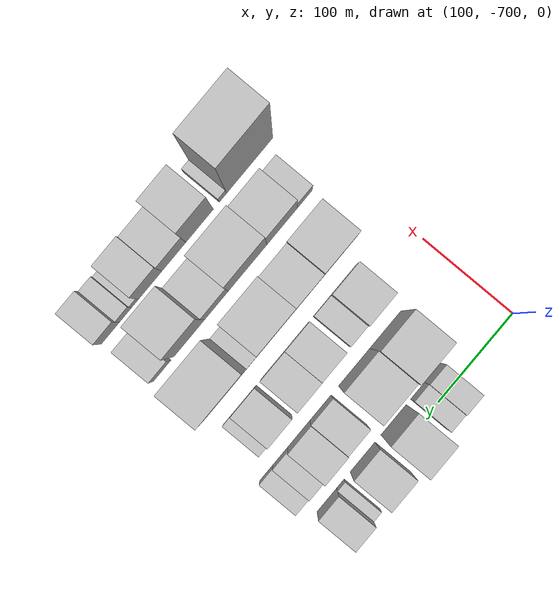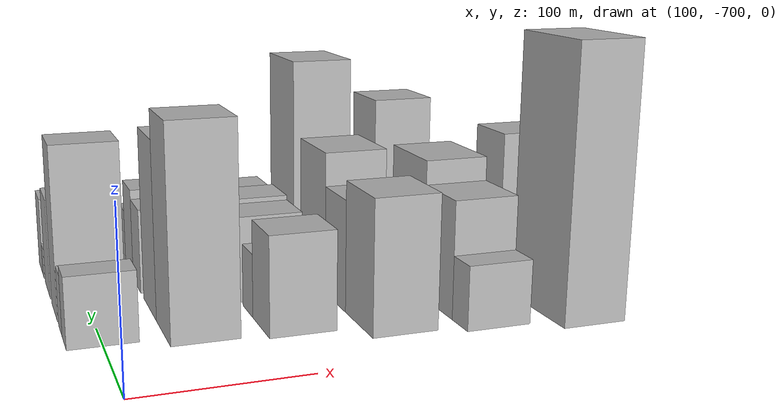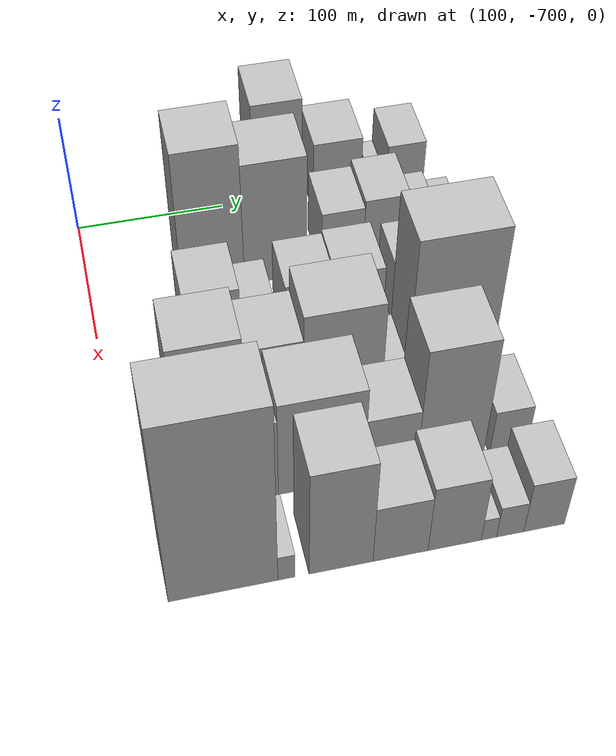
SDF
<sdf version="1.6">
 <world name="default">
  <model name="building_6">
   <static>1</static>
   <pose>100.0000 -616.7171 0 0.000000 0.000000 0.000000</pose>
   <link name="link">
    <pose>0 0 21.00 0 0 0</pose>
    <collision name="collision"><geometry><box><size>40.0000 21.7406 42.0000</size></box></geometry></collision>
    <visual name="visual">
     <cast_shadows>0</cast_shadows>
     <geometry><box><size>40.0000 21.7406 42.0000</size></box></geometry>
     <material>
      <script>
       <uri>model://HANNAS_wall/materials/scripts</uri>
       <uri>model://HANNAS_wall/materials/textures</uri>
       <name>vrc/HANNAS_wall</name>
      </script>
     </material>
    </visual>
   </link>
  </model>
  <model name="building_7">
   <static>1</static>
   <pose>100.0000 -596.4582 0 0.000000 0.000000 0.000000</pose>
   <link name="link">
    <pose>0 0 18.00 0 0 0</pose>
    <collision name="collision"><geometry><box><size>40.0000 18.7772 36.0000</size></box></geometry></collision>
    <visual name="visual">
     <cast_shadows>0</cast_shadows>
     <geometry><box><size>40.0000 18.7772 36.0000</size></box></geometry>
     <material>
      <script>
       <uri>model://HANNAS_wall/materials/scripts</uri>
       <uri>model://HANNAS_wall/materials/textures</uri>
       <name>vrc/HANNAS_wall</name>
      </script>
     </material>
    </visual>
   </link>
  </model>
  <model name="building_8">
   <static>1</static>
   <pose>100.0000 -564.1123 0 0.000000 0.000000 0.000000</pose>
   <link name="link">
    <pose>0 0 52.50 0 0 0</pose>
    <collision name="collision"><geometry><box><size>40.0000 33.9147 105.0000</size></box></geometry></collision>
    <visual name="visual">
     <cast_shadows>0</cast_shadows>
     <geometry><box><size>40.0000 33.9147 105.0000</size></box></geometry>
     <material>
      <script>
       <uri>model://HANNAS_wall/materials/scripts</uri>
       <uri>model://HANNAS_wall/materials/textures</uri>
       <name>vrc/HANNAS_wall</name>
      </script>
     </material>
    </visual>
   </link>
  </model>
  <model name="building_9">
   <static>1</static>
   <pose>100.0000 -522.4168 0 0.000000 0.000000 0.000000</pose>
   <link name="link">
    <pose>0 0 31.50 0 0 0</pose>
    <collision name="collision"><geometry><box><size>40.0000 33.4762 63.0000</size></box></geometry></collision>
    <visual name="visual">
     <cast_shadows>0</cast_shadows>
     <geometry><box><size>40.0000 33.4762 63.0000</size></box></geometry>
     <material>
      <script>
       <uri>model://HANNAS_wall/materials/scripts</uri>
       <uri>model://HANNAS_wall/materials/textures</uri>
       <name>vrc/HANNAS_wall</name>
      </script>
     </material>
    </visual>
   </link>
  </model>
  <model name="building_10">
   <static>1</static>
   <pose>100.0000 -492.5437 0 0.000000 0.000000 0.000000</pose>
   <link name="link">
    <pose>0 0 10.50 0 0 0</pose>
    <collision name="collision"><geometry><box><size>40.0000 10.2700 21.0000</size></box></geometry></collision>
    <visual name="visual">
     <cast_shadows>0</cast_shadows>
     <geometry><box><size>40.0000 10.2700 21.0000</size></box></geometry>
     <material>
      <script>
       <uri>model://HANNAS_wall/materials/scripts</uri>
       <uri>model://HANNAS_wall/materials/textures</uri>
       <name>vrc/HANNAS_wall</name>
      </script>
     </material>
    </visual>
   </link>
  </model>
  <model name="building_11">
   <static>1</static>
   <pose>100.0000 -474.2443 0 0.000000 0.000000 0.000000</pose>
   <link name="link">
    <pose>0 0 25.50 0 0 0</pose>
    <collision name="collision"><geometry><box><size>40.0000 26.3288 51.0000</size></box></geometry></collision>
    <visual name="visual">
     <cast_shadows>0</cast_shadows>
     <geometry><box><size>40.0000 26.3288 51.0000</size></box></geometry>
     <material>
      <script>
       <uri>model://HANNAS_wall/materials/scripts</uri>
       <uri>model://HANNAS_wall/materials/textures</uri>
       <name>vrc/HANNAS_wall</name>
      </script>
     </material>
    </visual>
   </link>
  </model>
  <model name="building_59">
   <static>1</static>
   <pose>155.0000 -619.2268 0 0.000000 0.000000 0.000000</pose>
   <link name="link">
    <pose>0 0 63.00 0 0 0</pose>
    <collision name="collision"><geometry><box><size>40.0000 41.8789 126.0000</size></box></geometry></collision>
    <visual name="visual">
     <cast_shadows>0</cast_shadows>
     <geometry><box><size>40.0000 41.8789 126.0000</size></box></geometry>
     <material>
      <script>
       <uri>model://HANNAS_wall/materials/scripts</uri>
       <uri>model://HANNAS_wall/materials/textures</uri>
       <name>vrc/HANNAS_wall</name>
      </script>
     </material>
    </visual>
   </link>
  </model>
  <model name="building_60">
   <static>1</static>
   <pose>155.0000 -577.2388 0 0.000000 0.000000 0.000000</pose>
   <link name="link">
    <pose>0 0 54.00 0 0 0</pose>
    <collision name="collision"><geometry><box><size>40.0000 42.0971 108.0000</size></box></geometry></collision>
    <visual name="visual">
     <cast_shadows>0</cast_shadows>
     <geometry><box><size>40.0000 42.0971 108.0000</size></box></geometry>
     <material>
      <script>
       <uri>model://HANNAS_wall/materials/scripts</uri>
       <uri>model://HANNAS_wall/materials/textures</uri>
       <name>vrc/HANNAS_wall</name>
      </script>
     </material>
    </visual>
   </link>
  </model>
  <model name="building_61">
   <static>1</static>
   <pose>155.0000 -531.8750 0 0.000000 0.000000 0.000000</pose>
   <link name="link">
    <pose>0 0 27.00 0 0 0</pose>
    <collision name="collision"><geometry><box><size>40.0000 28.6306 54.0000</size></box></geometry></collision>
    <visual name="visual">
     <cast_shadows>0</cast_shadows>
     <geometry><box><size>40.0000 28.6306 54.0000</size></box></geometry>
     <material>
      <script>
       <uri>model://HANNAS_wall/materials/scripts</uri>
       <uri>model://HANNAS_wall/materials/textures</uri>
       <name>vrc/HANNAS_wall</name>
      </script>
     </material>
    </visual>
   </link>
  </model>
  <model name="building_62">
   <static>1</static>
   <pose>155.0000 -502.5242 0 0.000000 0.000000 0.000000</pose>
   <link name="link">
    <pose>0 0 30.00 0 0 0</pose>
    <collision name="collision"><geometry><box><size>40.0000 30.0711 60.0000</size></box></geometry></collision>
    <visual name="visual">
     <cast_shadows>0</cast_shadows>
     <geometry><box><size>40.0000 30.0711 60.0000</size></box></geometry>
     <material>
      <script>
       <uri>model://HANNAS_wall/materials/scripts</uri>
       <uri>model://HANNAS_wall/materials/textures</uri>
       <name>vrc/HANNAS_wall</name>
      </script>
     </material>
    </visual>
   </link>
  </model>
  <model name="building_63">
   <static>1</static>
   <pose>155.0000 -477.6024 0 0.000000 0.000000 0.000000</pose>
   <link name="link">
    <pose>0 0 19.50 0 0 0</pose>
    <collision name="collision"><geometry><box><size>40.0000 19.7726 39.0000</size></box></geometry></collision>
    <visual name="visual">
     <cast_shadows>0</cast_shadows>
     <geometry><box><size>40.0000 19.7726 39.0000</size></box></geometry>
     <material>
      <script>
       <uri>model://HANNAS_wall/materials/scripts</uri>
       <uri>model://HANNAS_wall/materials/textures</uri>
       <name>vrc/HANNAS_wall</name>
      </script>
     </material>
    </visual>
   </link>
  </model>
  <model name="building_64">
   <static>1</static>
   <pose>155.0000 -458.9212 0 0.000000 0.000000 0.000000</pose>
   <link name="link">
    <pose>0 0 15.00 0 0 0</pose>
    <collision name="collision"><geometry><box><size>40.0000 17.5897 30.0000</size></box></geometry></collision>
    <visual name="visual">
     <cast_shadows>0</cast_shadows>
     <geometry><box><size>40.0000 17.5897 30.0000</size></box></geometry>
     <material>
      <script>
       <uri>model://HANNAS_wall/materials/scripts</uri>
       <uri>model://HANNAS_wall/materials/textures</uri>
       <name>vrc/HANNAS_wall</name>
      </script>
     </material>
    </visual>
   </link>
  </model>
  <model name="building_107">
   <static>1</static>
   <pose>210.0000 -628.2667 0 0.000000 0.000000 0.000000</pose>
   <link name="link">
    <pose>0 0 30.00 0 0 0</pose>
    <collision name="collision"><geometry><box><size>40.0000 35.0933 60.0000</size></box></geometry></collision>
    <visual name="visual">
     <cast_shadows>0</cast_shadows>
     <geometry><box><size>40.0000 35.0933 60.0000</size></box></geometry>
     <material>
      <script>
       <uri>model://HANNAS_wall/materials/scripts</uri>
       <uri>model://HANNAS_wall/materials/textures</uri>
       <name>vrc/HANNAS_wall</name>
      </script>
     </material>
    </visual>
   </link>
  </model>
  <model name="building_108">
   <static>1</static>
   <pose>210.0000 -599.4378 0 0.000000 0.000000 0.000000</pose>
   <link name="link">
    <pose>0 0 19.50 0 0 0</pose>
    <collision name="collision"><geometry><box><size>40.0000 22.5645 39.0000</size></box></geometry></collision>
    <visual name="visual">
     <cast_shadows>0</cast_shadows>
     <geometry><box><size>40.0000 22.5645 39.0000</size></box></geometry>
     <material>
      <script>
       <uri>model://HANNAS_wall/materials/scripts</uri>
       <uri>model://HANNAS_wall/materials/textures</uri>
       <name>vrc/HANNAS_wall</name>
      </script>
     </material>
    </visual>
   </link>
  </model>
  <model name="building_109">
   <static>1</static>
   <pose>210.0000 -566.1874 0 0.000000 0.000000 0.000000</pose>
   <link name="link">
    <pose>0 0 27.00 0 0 0</pose>
    <collision name="collision"><geometry><box><size>40.0000 31.9362 54.0000</size></box></geometry></collision>
    <visual name="visual">
     <cast_shadows>0</cast_shadows>
     <geometry><box><size>40.0000 31.9362 54.0000</size></box></geometry>
     <material>
      <script>
       <uri>model://HANNAS_wall/materials/scripts</uri>
       <uri>model://HANNAS_wall/materials/textures</uri>
       <name>vrc/HANNAS_wall</name>
      </script>
     </material>
    </visual>
   </link>
  </model>
  <model name="building_110">
   <static>1</static>
   <pose>210.0000 -534.3283 0 0.000000 0.000000 0.000000</pose>
   <link name="link">
    <pose>0 0 28.50 0 0 0</pose>
    <collision name="collision"><geometry><box><size>40.0000 31.7820 57.0000</size></box></geometry></collision>
    <visual name="visual">
     <cast_shadows>0</cast_shadows>
     <geometry><box><size>40.0000 31.7820 57.0000</size></box></geometry>
     <material>
      <script>
       <uri>model://HANNAS_wall/materials/scripts</uri>
       <uri>model://HANNAS_wall/materials/textures</uri>
       <name>vrc/HANNAS_wall</name>
      </script>
     </material>
    </visual>
   </link>
  </model>
  <model name="building_111">
   <static>1</static>
   <pose>210.0000 -495.6723 0 0.000000 0.000000 0.000000</pose>
   <link name="link">
    <pose>0 0 27.00 0 0 0</pose>
    <collision name="collision"><geometry><box><size>40.0000 31.5301 54.0000</size></box></geometry></collision>
    <visual name="visual">
     <cast_shadows>0</cast_shadows>
     <geometry><box><size>40.0000 31.5301 54.0000</size></box></geometry>
     <material>
      <script>
       <uri>model://HANNAS_wall/materials/scripts</uri>
       <uri>model://HANNAS_wall/materials/textures</uri>
       <name>vrc/HANNAS_wall</name>
      </script>
     </material>
    </visual>
   </link>
  </model>
  <model name="building_112">
   <static>1</static>
   <pose>210.0000 -473.8277 0 0.000000 0.000000 0.000000</pose>
   <link name="link">
    <pose>0 0 13.50 0 0 0</pose>
    <collision name="collision"><geometry><box><size>40.0000 12.1591 27.0000</size></box></geometry></collision>
    <visual name="visual">
     <cast_shadows>0</cast_shadows>
     <geometry><box><size>40.0000 12.1591 27.0000</size></box></geometry>
     <material>
      <script>
       <uri>model://HANNAS_wall/materials/scripts</uri>
       <uri>model://HANNAS_wall/materials/textures</uri>
       <name>vrc/HANNAS_wall</name>
      </script>
     </material>
    </visual>
   </link>
  </model>
  <model name="building_155">
   <static>1</static>
   <pose>265.0000 -641.3528 0 0.000000 0.000000 0.000000</pose>
   <link name="link">
    <pose>0 0 40.50 0 0 0</pose>
    <collision name="collision"><geometry><box><size>40.0000 44.5261 81.0000</size></box></geometry></collision>
    <visual name="visual">
     <cast_shadows>0</cast_shadows>
     <geometry><box><size>40.0000 44.5261 81.0000</size></box></geometry>
     <material>
      <script>
       <uri>model://HANNAS_wall/materials/scripts</uri>
       <uri>model://HANNAS_wall/materials/textures</uri>
       <name>vrc/HANNAS_wall</name>
      </script>
     </material>
    </visual>
   </link>
  </model>
  <model name="building_156">
   <static>1</static>
   <pose>265.0000 -600.9685 0 0.000000 0.000000 0.000000</pose>
   <link name="link">
    <pose>0 0 34.50 0 0 0</pose>
    <collision name="collision"><geometry><box><size>40.0000 36.2424 69.0000</size></box></geometry></collision>
    <visual name="visual">
     <cast_shadows>0</cast_shadows>
     <geometry><box><size>40.0000 36.2424 69.0000</size></box></geometry>
     <material>
      <script>
       <uri>model://HANNAS_wall/materials/scripts</uri>
       <uri>model://HANNAS_wall/materials/textures</uri>
       <name>vrc/HANNAS_wall</name>
      </script>
     </material>
    </visual>
   </link>
  </model>
  <model name="building_157">
   <static>1</static>
   <pose>265.0000 -558.1128 0 0.000000 0.000000 0.000000</pose>
   <link name="link">
    <pose>0 0 45.00 0 0 0</pose>
    <collision name="collision"><geometry><box><size>40.0000 49.4691 90.0000</size></box></geometry></collision>
    <visual name="visual">
     <cast_shadows>0</cast_shadows>
     <geometry><box><size>40.0000 49.4691 90.0000</size></box></geometry>
     <material>
      <script>
       <uri>model://HANNAS_wall/materials/scripts</uri>
       <uri>model://HANNAS_wall/materials/textures</uri>
       <name>vrc/HANNAS_wall</name>
      </script>
     </material>
    </visual>
   </link>
  </model>
  <model name="building_158">
   <static>1</static>
   <pose>265.0000 -525.6977 0 0.000000 0.000000 0.000000</pose>
   <link name="link">
    <pose>0 0 15.00 0 0 0</pose>
    <collision name="collision"><geometry><box><size>40.0000 15.3612 30.0000</size></box></geometry></collision>
    <visual name="visual">
     <cast_shadows>0</cast_shadows>
     <geometry><box><size>40.0000 15.3612 30.0000</size></box></geometry>
     <material>
      <script>
       <uri>model://HANNAS_wall/materials/scripts</uri>
       <uri>model://HANNAS_wall/materials/textures</uri>
       <name>vrc/HANNAS_wall</name>
      </script>
     </material>
    </visual>
   </link>
  </model>
  <model name="building_159">
   <static>1</static>
   <pose>265.0000 -490.9596 0 0.000000 0.000000 0.000000</pose>
   <link name="link">
    <pose>0 0 69.00 0 0 0</pose>
    <collision name="collision"><geometry><box><size>40.0000 54.1150 138.0000</size></box></geometry></collision>
    <visual name="visual">
     <cast_shadows>0</cast_shadows>
     <geometry><box><size>40.0000 54.1150 138.0000</size></box></geometry>
     <material>
      <script>
       <uri>model://HANNAS_wall/materials/scripts</uri>
       <uri>model://HANNAS_wall/materials/textures</uri>
       <name>vrc/HANNAS_wall</name>
      </script>
     </material>
    </visual>
   </link>
  </model>
  <model name="building_205">
   <static>1</static>
   <pose>320.0000 -660.9012 0 0.000000 0.000000 0.000000</pose>
   <link name="link">
    <pose>0 0 19.50 0 0 0</pose>
    <collision name="collision"><geometry><box><size>40.0000 20.2382 39.0000</size></box></geometry></collision>
    <visual name="visual">
     <cast_shadows>0</cast_shadows>
     <geometry><box><size>40.0000 20.2382 39.0000</size></box></geometry>
     <material>
      <script>
       <uri>model://HANNAS_wall/materials/scripts</uri>
       <uri>model://HANNAS_wall/materials/textures</uri>
       <name>vrc/HANNAS_wall</name>
      </script>
     </material>
    </visual>
   </link>
  </model>
  <model name="building_206">
   <static>1</static>
   <pose>320.0000 -630.5078 0 0.000000 0.000000 0.000000</pose>
   <link name="link">
    <pose>0 0 36.00 0 0 0</pose>
    <collision name="collision"><geometry><box><size>40.0000 40.5485 72.0000</size></box></geometry></collision>
    <visual name="visual">
     <cast_shadows>0</cast_shadows>
     <geometry><box><size>40.0000 40.5485 72.0000</size></box></geometry>
     <material>
      <script>
       <uri>model://HANNAS_wall/materials/scripts</uri>
       <uri>model://HANNAS_wall/materials/textures</uri>
       <name>vrc/HANNAS_wall</name>
      </script>
     </material>
    </visual>
   </link>
  </model>
  <model name="building_207">
   <static>1</static>
   <pose>320.0000 -584.3606 0 0.000000 0.000000 0.000000</pose>
   <link name="link">
    <pose>0 0 43.50 0 0 0</pose>
    <collision name="collision"><geometry><box><size>40.0000 51.7460 87.0000</size></box></geometry></collision>
    <visual name="visual">
     <cast_shadows>0</cast_shadows>
     <geometry><box><size>40.0000 51.7460 87.0000</size></box></geometry>
     <material>
      <script>
       <uri>model://HANNAS_wall/materials/scripts</uri>
       <uri>model://HANNAS_wall/materials/textures</uri>
       <name>vrc/HANNAS_wall</name>
      </script>
     </material>
    </visual>
   </link>
  </model>
  <model name="building_208">
   <static>1</static>
   <pose>320.0000 -542.3988 0 0.000000 0.000000 0.000000</pose>
   <link name="link">
    <pose>0 0 28.50 0 0 0</pose>
    <collision name="collision"><geometry><box><size>40.0000 32.1776 57.0000</size></box></geometry></collision>
    <visual name="visual">
     <cast_shadows>0</cast_shadows>
     <geometry><box><size>40.0000 32.1776 57.0000</size></box></geometry>
     <material>
      <script>
       <uri>model://HANNAS_wall/materials/scripts</uri>
       <uri>model://HANNAS_wall/materials/textures</uri>
       <name>vrc/HANNAS_wall</name>
      </script>
     </material>
    </visual>
   </link>
  </model>
  <model name="building_209">
   <static>1</static>
   <pose>320.0000 -505.6804 0 0.000000 0.000000 0.000000</pose>
   <link name="link">
    <pose>0 0 55.50 0 0 0</pose>
    <collision name="collision"><geometry><box><size>40.0000 41.2592 111.0000</size></box></geometry></collision>
    <visual name="visual">
     <cast_shadows>0</cast_shadows>
     <geometry><box><size>40.0000 41.2592 111.0000</size></box></geometry>
     <material>
      <script>
       <uri>model://HANNAS_wall/materials/scripts</uri>
       <uri>model://HANNAS_wall/materials/textures</uri>
       <name>vrc/HANNAS_wall</name>
      </script>
     </material>
    </visual>
   </link>
  </model>
  <model name="building_210">
   <static>1</static>
   <pose>320.0000 -469.3583 0 0.000000 0.000000 0.000000</pose>
   <link name="link">
    <pose>0 0 21.00 0 0 0</pose>
    <collision name="collision"><geometry><box><size>40.0000 23.3848 42.0000</size></box></geometry></collision>
    <visual name="visual">
     <cast_shadows>0</cast_shadows>
     <geometry><box><size>40.0000 23.3848 42.0000</size></box></geometry>
     <material>
      <script>
       <uri>model://HANNAS_wall/materials/scripts</uri>
       <uri>model://HANNAS_wall/materials/textures</uri>
       <name>vrc/HANNAS_wall</name>
      </script>
     </material>
    </visual>
   </link>
  </model>
  <model name="building_250">
   <static>1</static>
   <pose>375.0000 -653.1786 0 0.000000 0.000000 0.000000</pose>
   <link name="link">
    <pose>0 0 82.50 0 0 0</pose>
    <collision name="collision"><geometry><box><size>40.0000 61.9826 165.0000</size></box></geometry></collision>
    <visual name="visual">
     <cast_shadows>0</cast_shadows>
     <geometry><box><size>40.0000 61.9826 165.0000</size></box></geometry>
     <material>
      <script>
       <uri>model://HANNAS_wall/materials/scripts</uri>
       <uri>model://HANNAS_wall/materials/textures</uri>
       <name>vrc/HANNAS_wall</name>
      </script>
     </material>
    </visual>
   </link>
  </model>
  <model name="building_251">
   <static>1</static>
   <pose>375.0000 -617.2357 0 0.000000 0.000000 0.000000</pose>
   <link name="link">
    <pose>0 0 12.00 0 0 0</pose>
    <collision name="collision"><geometry><box><size>40.0000 9.9034 24.0000</size></box></geometry></collision>
    <visual name="visual">
     <cast_shadows>0</cast_shadows>
     <geometry><box><size>40.0000 9.9034 24.0000</size></box></geometry>
     <material>
      <script>
       <uri>model://HANNAS_wall/materials/scripts</uri>
       <uri>model://HANNAS_wall/materials/textures</uri>
       <name>vrc/HANNAS_wall</name>
      </script>
     </material>
    </visual>
   </link>
  </model>
  <model name="building_252">
   <static>1</static>
   <pose>375.0000 -585.8013 0 0.000000 0.000000 0.000000</pose>
   <link name="link">
    <pose>0 0 49.50 0 0 0</pose>
    <collision name="collision"><geometry><box><size>40.0000 36.9654 99.0000</size></box></geometry></collision>
    <visual name="visual">
     <cast_shadows>0</cast_shadows>
     <geometry><box><size>40.0000 36.9654 99.0000</size></box></geometry>
     <material>
      <script>
       <uri>model://HANNAS_wall/materials/scripts</uri>
       <uri>model://HANNAS_wall/materials/textures</uri>
       <name>vrc/HANNAS_wall</name>
      </script>
     </material>
    </visual>
   </link>
  </model>
  <model name="building_253">
   <static>1</static>
   <pose>375.0000 -551.1773 0 0.000000 0.000000 0.000000</pose>
   <link name="link">
    <pose>0 0 27.00 0 0 0</pose>
    <collision name="collision"><geometry><box><size>40.0000 32.2824 54.0000</size></box></geometry></collision>
    <visual name="visual">
     <cast_shadows>0</cast_shadows>
     <geometry><box><size>40.0000 32.2824 54.0000</size></box></geometry>
     <material>
      <script>
       <uri>model://HANNAS_wall/materials/scripts</uri>
       <uri>model://HANNAS_wall/materials/textures</uri>
       <name>vrc/HANNAS_wall</name>
      </script>
     </material>
    </visual>
   </link>
  </model>
  <model name="building_254">
   <static>1</static>
   <pose>375.0000 -519.2331 0 0.000000 0.000000 0.000000</pose>
   <link name="link">
    <pose>0 0 31.50 0 0 0</pose>
    <collision name="collision"><geometry><box><size>40.0000 31.6061 63.0000</size></box></geometry></collision>
    <visual name="visual">
     <cast_shadows>0</cast_shadows>
     <geometry><box><size>40.0000 31.6061 63.0000</size></box></geometry>
     <material>
      <script>
       <uri>model://HANNAS_wall/materials/scripts</uri>
       <uri>model://HANNAS_wall/materials/textures</uri>
       <name>vrc/HANNAS_wall</name>
      </script>
     </material>
    </visual>
   </link>
  </model>
  <model name="building_255">
   <static>1</static>
   <pose>375.0000 -498.8553 0 0.000000 0.000000 0.000000</pose>
   <link name="link">
    <pose>0 0 10.50 0 0 0</pose>
    <collision name="collision"><geometry><box><size>40.0000 9.1496 21.0000</size></box></geometry></collision>
    <visual name="visual">
     <cast_shadows>0</cast_shadows>
     <geometry><box><size>40.0000 9.1496 21.0000</size></box></geometry>
     <material>
      <script>
       <uri>model://HANNAS_wall/materials/scripts</uri>
       <uri>model://HANNAS_wall/materials/textures</uri>
       <name>vrc/HANNAS_wall</name>
      </script>
     </material>
    </visual>
   </link>
  </model>
  <model name="building_256">
   <static>1</static>
   <pose>375.0000 -486.1285 0 0.000000 0.000000 0.000000</pose>
   <link name="link">
    <pose>0 0 15.00 0 0 0</pose>
    <collision name="collision"><geometry><box><size>40.0000 16.3040 30.0000</size></box></geometry></collision>
    <visual name="visual">
     <cast_shadows>0</cast_shadows>
     <geometry><box><size>40.0000 16.3040 30.0000</size></box></geometry>
     <material>
      <script>
       <uri>model://HANNAS_wall/materials/scripts</uri>
       <uri>model://HANNAS_wall/materials/textures</uri>
       <name>vrc/HANNAS_wall</name>
      </script>
     </material>
    </visual>
   </link>
  </model>
  <model name="building_257">
   <static>1</static>
   <pose>375.0000 -465.7104 0 0.000000 0.000000 0.000000</pose>
   <link name="link">
    <pose>0 0 24.00 0 0 0</pose>
    <collision name="collision"><geometry><box><size>40.0000 24.5322 48.0000</size></box></geometry></collision>
    <visual name="visual">
     <cast_shadows>0</cast_shadows>
     <geometry><box><size>40.0000 24.5322 48.0000</size></box></geometry>
     <material>
      <script>
       <uri>model://HANNAS_wall/materials/scripts</uri>
       <uri>model://HANNAS_wall/materials/textures</uri>
       <name>vrc/HANNAS_wall</name>
      </script>
     </material>
    </visual>
   </link>
  </model>
 </world>
</sdf>
